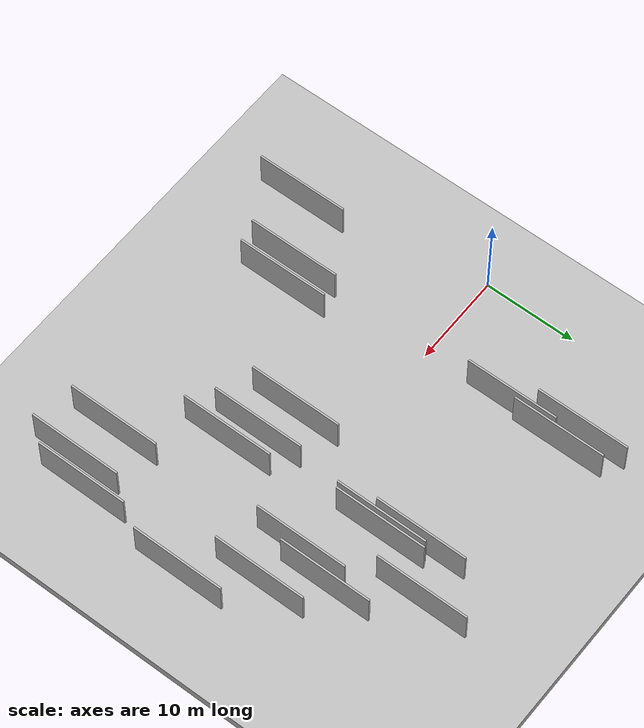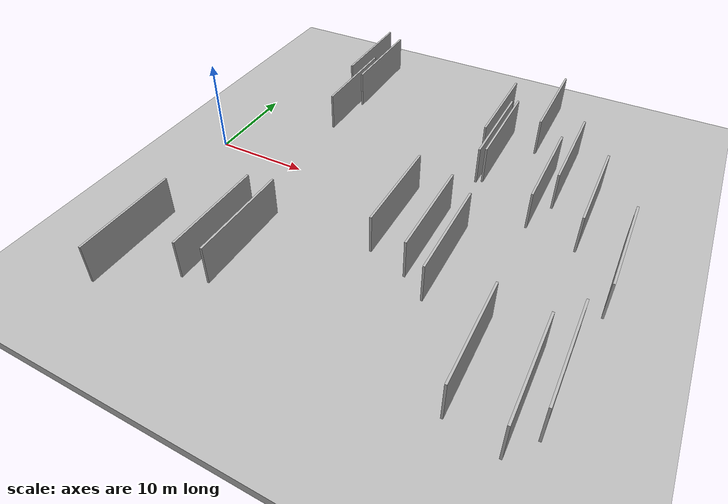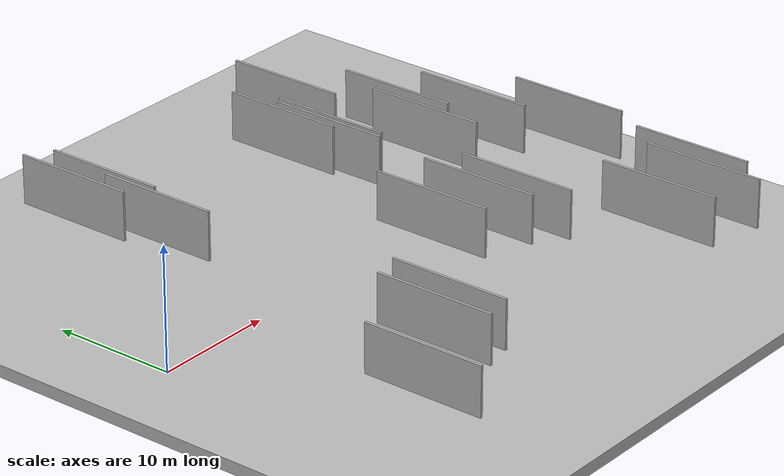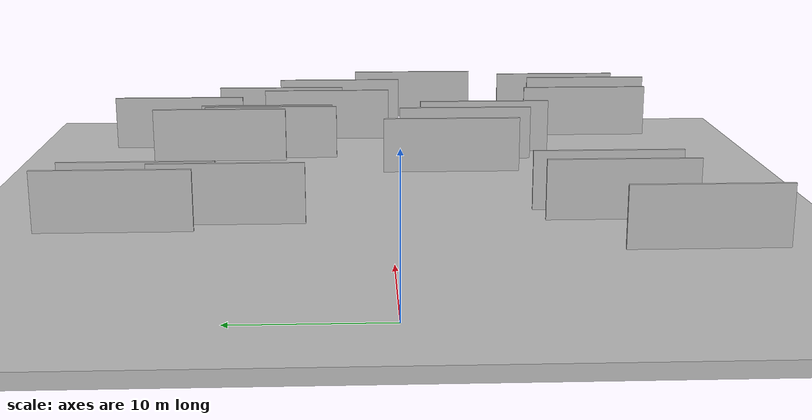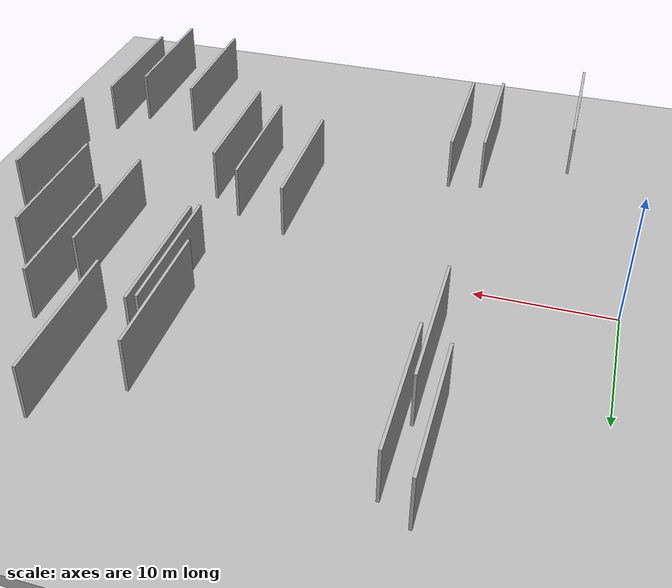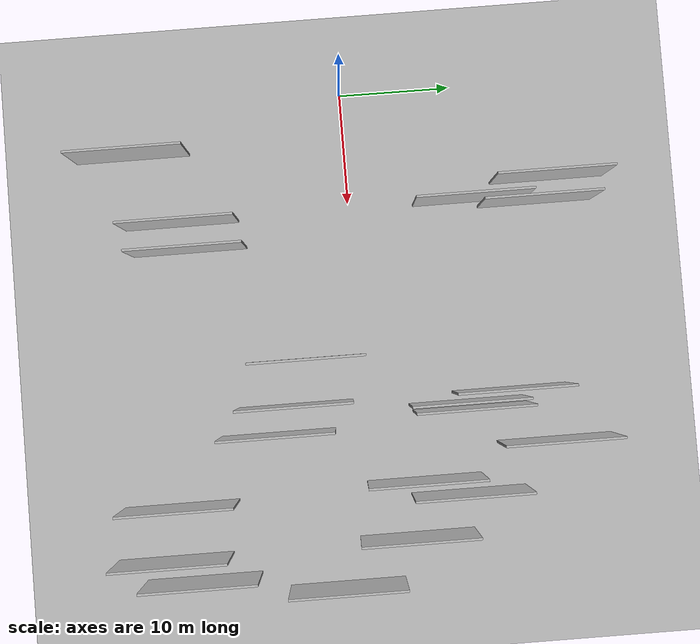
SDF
<?xml version="1.0" encoding="utf-8"?>

<sdf version="1.6">

   <world name="default">

      <gui fullscreen="0">

         <camera name="user_camera">

            <pose>-15 0 4.57585 0 0 0</pose>

            <view_controller>orbit</view_controller>

         </camera>

      </gui>

      <scene>

         <sky>

           <clouds>

             <speed>12</speed>

           </clouds>

         </sky>

         <ambient>0.4 0.4 0.4 1</ambient>

         <background>0.7 0.7 0.7 1</background>

         <shadows>1</shadows>

      </scene>

      <gravity>0 0 -9.8066</gravity>

      <magnetic_field>6e-06 2.3e-05 -4.2e-05</magnetic_field>

      <physics default="0" name="default_physics" type="ode">

         <ode>

            <solver>

               <type>quick</type>

               <iters>10</iters>

               <sor>1.0</sor>

               <use_dynamic_moi_rescaling>0</use_dynamic_moi_rescaling>

            </solver>

            <constraints>

               <cfm>0</cfm>

               <erp>0.2</erp>

               <contact_max_correcting_vel>100</contact_max_correcting_vel>

               <contact_surface_layer>0.001</contact_surface_layer>

            </constraints>

         </ode>

         <max_step_size>0.004</max_step_size>

         <real_time_factor>1</real_time_factor>

         <real_time_update_rate>250</real_time_update_rate>

      </physics>

      <light name="sun" type="directional">

         <cast_shadows>1</cast_shadows>

         <pose>0 0 10 0 0 0</pose>

         <diffuse>0.8 0.8 0.8 1</diffuse>

         <specular>0.2 0.2 0.2 1</specular>

         <attenuation>

            <range>1000</range>

            <constant>0.9</constant>

            <linear>0.01</linear>

            <quadratic>0.001</quadratic>

         </attenuation>

         <direction>-0.5 0.1 -0.9</direction>

      </light>

      <include>

         <name>ground_plane_1</name>

         <uri>model://HANNAS_ground_plane</uri>

         <pose>0 0 0  0 0 0</pose>

      </include>

      <include>

         <name>ground_plane_2</name>

         <uri>model://HANNAS_ground_plane</uri>

         <pose>100 0 0  0 0 0</pose>

      </include>

      <model name="HANNAS_wall_1">

         <static>1</static>

         <pose frame="">27.7297 12.7606 2.5 0.000000 0.000000 1.570796</pose>

         <link name="link">

            <pose frame="">0 0 2.00 0 0 0</pose>

            <collision name="collision">

               <geometry>

                  <box>

                     <size>10.00 0.2 4.00</size>

                  </box>

               </geometry>

               <max_contacts>10</max_contacts>

               <surface>

                  <contact>

                     <ode/>

                  </contact>

                  <bounce/>

                  <friction>

                     <torsional>

                        <ode/>

                     </torsional>

                     <ode/>

                  </friction>

               </surface>

            </collision>

            <visual name="visual">

               <cast_shadows>0</cast_shadows>

               <geometry>

                  <box>

                     <size>10.00 0.2 4.00</size>

                  </box>

               </geometry>

               <material>

                  <script>

                     <uri>model://HANNAS_wall/materials/scripts</uri>

                     <uri>model://HANNAS_wall/materials/textures</uri>

                     <name>vrc/HANNAS_wall</name>

                  </script>

               </material>

            </visual>

            <self_collide>0</self_collide>

            <enable_wind>0</enable_wind>

            <kinematic>0</kinematic>

         </link>

      </model>

      <model name="HANNAS_wall_2">

         <static>1</static>

         <pose frame="">29.1136 9.2306 2.5 0.000000 0.000000 1.570796</pose>

         <link name="link">

            <pose frame="">0 0 2.00 0 0 0</pose>

            <collision name="collision">

               <geometry>

                  <box>

                     <size>10.00 0.2 4.00</size>

                  </box>

               </geometry>

               <max_contacts>10</max_contacts>

               <surface>

                  <contact>

                     <ode/>

                  </contact>

                  <bounce/>

                  <friction>

                     <torsional>

                        <ode/>

                     </torsional>

                     <ode/>

                  </friction>

               </surface>

            </collision>

            <visual name="visual">

               <cast_shadows>0</cast_shadows>

               <geometry>

                  <box>

                     <size>10.00 0.2 4.00</size>

                  </box>

               </geometry>

               <material>

                  <script>

                     <uri>model://HANNAS_wall/materials/scripts</uri>

                     <uri>model://HANNAS_wall/materials/textures</uri>

                     <name>vrc/HANNAS_wall</name>

                  </script>

               </material>

            </visual>

            <self_collide>0</self_collide>

            <enable_wind>0</enable_wind>

            <kinematic>0</kinematic>

         </link>

      </model>

      <model name="HANNAS_wall_3">

         <static>1</static>

         <pose frame="">34.9821 4.7703 2.5 0.000000 0.000000 1.570796</pose>

         <link name="link">

            <pose frame="">0 0 2.00 0 0 0</pose>

            <collision name="collision">

               <geometry>

                  <box>

                     <size>10.00 0.2 4.00</size>

                  </box>

               </geometry>

               <max_contacts>10</max_contacts>

               <surface>

                  <contact>

                     <ode/>

                  </contact>

                  <bounce/>

                  <friction>

                     <torsional>

                        <ode/>

                     </torsional>

                     <ode/>

                  </friction>

               </surface>

            </collision>

            <visual name="visual">

               <cast_shadows>0</cast_shadows>

               <geometry>

                  <box>

                     <size>10.00 0.2 4.00</size>

                  </box>

               </geometry>

               <material>

                  <script>

                     <uri>model://HANNAS_wall/materials/scripts</uri>

                     <uri>model://HANNAS_wall/materials/textures</uri>

                     <name>vrc/HANNAS_wall</name>

                  </script>

               </material>

            </visual>

            <self_collide>0</self_collide>

            <enable_wind>0</enable_wind>

            <kinematic>0</kinematic>

         </link>

      </model>

      <model name="HANNAS_wall_4">

         <static>1</static>

         <pose frame="">13.6669 -14.2070 2.5 0.000000 0.000000 1.570796</pose>

         <link name="link">

            <pose frame="">0 0 2.00 0 0 0</pose>

            <collision name="collision">

               <geometry>

                  <box>

                     <size>10.00 0.2 4.00</size>

                  </box>

               </geometry>

               <max_contacts>10</max_contacts>

               <surface>

                  <contact>

                     <ode/>

                  </contact>

                  <bounce/>

                  <friction>

                     <torsional>

                        <ode/>

                     </torsional>

                     <ode/>

                  </friction>

               </surface>

            </collision>

            <visual name="visual">

               <cast_shadows>0</cast_shadows>

               <geometry>

                  <box>

                     <size>10.00 0.2 4.00</size>

                  </box>

               </geometry>

               <material>

                  <script>

                     <uri>model://HANNAS_wall/materials/scripts</uri>

                     <uri>model://HANNAS_wall/materials/textures</uri>

                     <name>vrc/HANNAS_wall</name>

                  </script>

               </material>

            </visual>

            <self_collide>0</self_collide>

            <enable_wind>0</enable_wind>

            <kinematic>0</kinematic>

         </link>

      </model>

      <model name="HANNAS_wall_5">

         <static>1</static>

         <pose frame="">23.8813 -4.6090 2.5 0.000000 0.000000 1.570796</pose>

         <link name="link">

            <pose frame="">0 0 2.00 0 0 0</pose>

            <collision name="collision">

               <geometry>

                  <box>

                     <size>10.00 0.2 4.00</size>

                  </box>

               </geometry>

               <max_contacts>10</max_contacts>

               <surface>

                  <contact>

                     <ode/>

                  </contact>

                  <bounce/>

                  <friction>

                     <torsional>

                        <ode/>

                     </torsional>

                     <ode/>

                  </friction>

               </surface>

            </collision>

            <visual name="visual">

               <cast_shadows>0</cast_shadows>

               <geometry>

                  <box>

                     <size>10.00 0.2 4.00</size>

                  </box>

               </geometry>

               <material>

                  <script>

                     <uri>model://HANNAS_wall/materials/scripts</uri>

                     <uri>model://HANNAS_wall/materials/textures</uri>

                     <name>vrc/HANNAS_wall</name>

                  </script>

               </material>

            </visual>

            <self_collide>0</self_collide>

            <enable_wind>0</enable_wind>

            <kinematic>0</kinematic>

         </link>

      </model>

      <model name="HANNAS_wall_6">

         <static>1</static>

         <pose frame="">5.0486 -18.6719 2.5 0.000000 0.000000 1.570796</pose>

         <link name="link">

            <pose frame="">0 0 2.00 0 0 0</pose>

            <collision name="collision">

               <geometry>

                  <box>

                     <size>10.00 0.2 4.00</size>

                  </box>

               </geometry>

               <max_contacts>10</max_contacts>

               <surface>

                  <contact>

                     <ode/>

                  </contact>

                  <bounce/>

                  <friction>

                     <torsional>

                        <ode/>

                     </torsional>

                     <ode/>

                  </friction>

               </surface>

            </collision>

            <visual name="visual">

               <cast_shadows>0</cast_shadows>

               <geometry>

                  <box>

                     <size>10.00 0.2 4.00</size>

                  </box>

               </geometry>

               <material>

                  <script>

                     <uri>model://HANNAS_wall/materials/scripts</uri>

                     <uri>model://HANNAS_wall/materials/textures</uri>

                     <name>vrc/HANNAS_wall</name>

                  </script>

               </material>

            </visual>

            <self_collide>0</self_collide>

            <enable_wind>0</enable_wind>

            <kinematic>0</kinematic>

         </link>

      </model>

      <model name="HANNAS_wall_7">

         <static>1</static>

         <pose frame="">30.1408 -7.6224 2.5 0.000000 0.000000 1.570796</pose>

         <link name="link">

            <pose frame="">0 0 2.00 0 0 0</pose>

            <collision name="collision">

               <geometry>

                  <box>

                     <size>10.00 0.2 4.00</size>

                  </box>

               </geometry>

               <max_contacts>10</max_contacts>

               <surface>

                  <contact>

                     <ode/>

                  </contact>

                  <bounce/>

                  <friction>

                     <torsional>

                        <ode/>

                     </torsional>

                     <ode/>

                  </friction>

               </surface>

            </collision>

            <visual name="visual">

               <cast_shadows>0</cast_shadows>

               <geometry>

                  <box>

                     <size>10.00 0.2 4.00</size>

                  </box>

               </geometry>

               <material>

                  <script>

                     <uri>model://HANNAS_wall/materials/scripts</uri>

                     <uri>model://HANNAS_wall/materials/textures</uri>

                     <name>vrc/HANNAS_wall</name>

                  </script>

               </material>

            </visual>

            <self_collide>0</self_collide>

            <enable_wind>0</enable_wind>

            <kinematic>0</kinematic>

         </link>

      </model>

      <model name="HANNAS_wall_8">

         <static>1</static>

         <pose frame="">11.0710 10.6341 2.5 0.000000 0.000000 1.570796</pose>

         <link name="link">

            <pose frame="">0 0 2.00 0 0 0</pose>

            <collision name="collision">

               <geometry>

                  <box>

                     <size>10.00 0.2 4.00</size>

                  </box>

               </geometry>

               <max_contacts>10</max_contacts>

               <surface>

                  <contact>

                     <ode/>

                  </contact>

                  <bounce/>

                  <friction>

                     <torsional>

                        <ode/>

                     </torsional>

                     <ode/>

                  </friction>

               </surface>

            </collision>

            <visual name="visual">

               <cast_shadows>0</cast_shadows>

               <geometry>

                  <box>

                     <size>10.00 0.2 4.00</size>

                  </box>

               </geometry>

               <material>

                  <script>

                     <uri>model://HANNAS_wall/materials/scripts</uri>

                     <uri>model://HANNAS_wall/materials/textures</uri>

                     <name>vrc/HANNAS_wall</name>

                  </script>

               </material>

            </visual>

            <self_collide>0</self_collide>

            <enable_wind>0</enable_wind>

            <kinematic>0</kinematic>

         </link>

      </model>

      <model name="HANNAS_wall_9">

         <static>1</static>

         <pose frame="">28.5449 8.9120 2.5 0.000000 0.000000 1.570796</pose>

         <link name="link">

            <pose frame="">0 0 2.00 0 0 0</pose>

            <collision name="collision">

               <geometry>

                  <box>

                     <size>10.00 0.2 4.00</size>

                  </box>

               </geometry>

               <max_contacts>10</max_contacts>

               <surface>

                  <contact>

                     <ode/>

                  </contact>

                  <bounce/>

                  <friction>

                     <torsional>

                        <ode/>

                     </torsional>

                     <ode/>

                  </friction>

               </surface>

            </collision>

            <visual name="visual">

               <cast_shadows>0</cast_shadows>

               <geometry>

                  <box>

                     <size>10.00 0.2 4.00</size>

                  </box>

               </geometry>

               <material>

                  <script>

                     <uri>model://HANNAS_wall/materials/scripts</uri>

                     <uri>model://HANNAS_wall/materials/textures</uri>

                     <name>vrc/HANNAS_wall</name>

                  </script>

               </material>

            </visual>

            <self_collide>0</self_collide>

            <enable_wind>0</enable_wind>

            <kinematic>0</kinematic>

         </link>

      </model>

      <model name="HANNAS_wall_10">

         <static>1</static>

         <pose frame="">42.0780 -14.9169 2.5 0.000000 0.000000 1.570796</pose>

         <link name="link">

            <pose frame="">0 0 2.00 0 0 0</pose>

            <collision name="collision">

               <geometry>

                  <box>

                     <size>10.00 0.2 4.00</size>

                  </box>

               </geometry>

               <max_contacts>10</max_contacts>

               <surface>

                  <contact>

                     <ode/>

                  </contact>

                  <bounce/>

                  <friction>

                     <torsional>

                        <ode/>

                     </torsional>

                     <ode/>

                  </friction>

               </surface>

            </collision>

            <visual name="visual">

               <cast_shadows>0</cast_shadows>

               <geometry>

                  <box>

                     <size>10.00 0.2 4.00</size>

                  </box>

               </geometry>

               <material>

                  <script>

                     <uri>model://HANNAS_wall/materials/scripts</uri>

                     <uri>model://HANNAS_wall/materials/textures</uri>

                     <name>vrc/HANNAS_wall</name>

                  </script>

               </material>

            </visual>

            <self_collide>0</self_collide>

            <enable_wind>0</enable_wind>

            <kinematic>0</kinematic>

         </link>

      </model>

      <model name="HANNAS_wall_11">

         <static>1</static>

         <pose frame="">35.6807 -16.4544 2.5 0.000000 0.000000 1.570796</pose>

         <link name="link">

            <pose frame="">0 0 2.00 0 0 0</pose>

            <collision name="collision">

               <geometry>

                  <box>

                     <size>10.00 0.2 4.00</size>

                  </box>

               </geometry>

               <max_contacts>10</max_contacts>

               <surface>

                  <contact>

                     <ode/>

                  </contact>

                  <bounce/>

                  <friction>

                     <torsional>

                        <ode/>

                     </torsional>

                     <ode/>

                  </friction>

               </surface>

            </collision>

            <visual name="visual">

               <cast_shadows>0</cast_shadows>

               <geometry>

                  <box>

                     <size>10.00 0.2 4.00</size>

                  </box>

               </geometry>

               <material>

                  <script>

                     <uri>model://HANNAS_wall/materials/scripts</uri>

                     <uri>model://HANNAS_wall/materials/textures</uri>

                     <name>vrc/HANNAS_wall</name>

                  </script>

               </material>

            </visual>

            <self_collide>0</self_collide>

            <enable_wind>0</enable_wind>

            <kinematic>0</kinematic>

         </link>

      </model>

      <model name="HANNAS_wall_12">

         <static>1</static>

         <pose frame="">32.3566 16.3644 2.5 0.000000 0.000000 1.570796</pose>

         <link name="link">

            <pose frame="">0 0 2.00 0 0 0</pose>

            <collision name="collision">

               <geometry>

                  <box>

                     <size>10.00 0.2 4.00</size>

                  </box>

               </geometry>

               <max_contacts>10</max_contacts>

               <surface>

                  <contact>

                     <ode/>

                  </contact>

                  <bounce/>

                  <friction>

                     <torsional>

                        <ode/>

                     </torsional>

                     <ode/>

                  </friction>

               </surface>

            </collision>

            <visual name="visual">

               <cast_shadows>0</cast_shadows>

               <geometry>

                  <box>

                     <size>10.00 0.2 4.00</size>

                  </box>

               </geometry>

               <material>

                  <script>

                     <uri>model://HANNAS_wall/materials/scripts</uri>

                     <uri>model://HANNAS_wall/materials/textures</uri>

                     <name>vrc/HANNAS_wall</name>

                  </script>

               </material>

            </visual>

            <self_collide>0</self_collide>

            <enable_wind>0</enable_wind>

            <kinematic>0</kinematic>

         </link>

      </model>

      <model name="HANNAS_wall_13">

         <static>1</static>

         <pose frame="">9.6298 17.5691 2.5 0.000000 0.000000 1.570796</pose>

         <link name="link">

            <pose frame="">0 0 2.00 0 0 0</pose>

            <collision name="collision">

               <geometry>

                  <box>

                     <size>10.00 0.2 4.00</size>

                  </box>

               </geometry>

               <max_contacts>10</max_contacts>

               <surface>

                  <contact>

                     <ode/>

                  </contact>

                  <bounce/>

                  <friction>

                     <torsional>

                        <ode/>

                     </torsional>

                     <ode/>

                  </friction>

               </surface>

            </collision>

            <visual name="visual">

               <cast_shadows>0</cast_shadows>

               <geometry>

                  <box>

                     <size>10.00 0.2 4.00</size>

                  </box>

               </geometry>

               <material>

                  <script>

                     <uri>model://HANNAS_wall/materials/scripts</uri>

                     <uri>model://HANNAS_wall/materials/textures</uri>

                     <name>vrc/HANNAS_wall</name>

                  </script>

               </material>

            </visual>

            <self_collide>0</self_collide>

            <enable_wind>0</enable_wind>

            <kinematic>0</kinematic>

         </link>

      </model>

      <model name="HANNAS_wall_14">

         <static>1</static>

         <pose frame="">43.4850 -2.5409 2.5 0.000000 0.000000 1.570796</pose>

         <link name="link">

            <pose frame="">0 0 2.00 0 0 0</pose>

            <collision name="collision">

               <geometry>

                  <box>

                     <size>10.00 0.2 4.00</size>

                  </box>

               </geometry>

               <max_contacts>10</max_contacts>

               <surface>

                  <contact>

                     <ode/>

                  </contact>

                  <bounce/>

                  <friction>

                     <torsional>

                        <ode/>

                     </torsional>

                     <ode/>

                  </friction>

               </surface>

            </collision>

            <visual name="visual">

               <cast_shadows>0</cast_shadows>

               <geometry>

                  <box>

                     <size>10.00 0.2 4.00</size>

                  </box>

               </geometry>

               <material>

                  <script>

                     <uri>model://HANNAS_wall/materials/scripts</uri>

                     <uri>model://HANNAS_wall/materials/textures</uri>

                     <name>vrc/HANNAS_wall</name>

                  </script>

               </material>

            </visual>

            <self_collide>0</self_collide>

            <enable_wind>0</enable_wind>

            <kinematic>0</kinematic>

         </link>

      </model>

      <model name="HANNAS_wall_15">

         <static>1</static>

         <pose frame="">39.7110 3.7896 2.5 0.000000 0.000000 1.570796</pose>

         <link name="link">

            <pose frame="">0 0 2.00 0 0 0</pose>

            <collision name="collision">

               <geometry>

                  <box>

                     <size>10.00 0.2 4.00</size>

                  </box>

               </geometry>

               <max_contacts>10</max_contacts>

               <surface>

                  <contact>

                     <ode/>

                  </contact>

                  <bounce/>

                  <friction>

                     <torsional>

                        <ode/>

                     </torsional>

                     <ode/>

                  </friction>

               </surface>

            </collision>

            <visual name="visual">

               <cast_shadows>0</cast_shadows>

               <geometry>

                  <box>

                     <size>10.00 0.2 4.00</size>

                  </box>

               </geometry>

               <material>

                  <script>

                     <uri>model://HANNAS_wall/materials/scripts</uri>

                     <uri>model://HANNAS_wall/materials/textures</uri>

                     <name>vrc/HANNAS_wall</name>

                  </script>

               </material>

            </visual>

            <self_collide>0</self_collide>

            <enable_wind>0</enable_wind>

            <kinematic>0</kinematic>

         </link>

      </model>

      <model name="HANNAS_wall_16">

         <static>1</static>

         <pose frame="">27.7596 -5.9204 2.5 0.000000 0.000000 1.570796</pose>

         <link name="link">

            <pose frame="">0 0 2.00 0 0 0</pose>

            <collision name="collision">

               <geometry>

                  <box>

                     <size>10.00 0.2 4.00</size>

                  </box>

               </geometry>

               <max_contacts>10</max_contacts>

               <surface>

                  <contact>

                     <ode/>

                  </contact>

                  <bounce/>

                  <friction>

                     <torsional>

                        <ode/>

                     </torsional>

                     <ode/>

                  </friction>

               </surface>

            </collision>

            <visual name="visual">

               <cast_shadows>0</cast_shadows>

               <geometry>

                  <box>

                     <size>10.00 0.2 4.00</size>

                  </box>

               </geometry>

               <material>

                  <script>

                     <uri>model://HANNAS_wall/materials/scripts</uri>

                     <uri>model://HANNAS_wall/materials/textures</uri>

                     <name>vrc/HANNAS_wall</name>

                  </script>

               </material>

            </visual>

            <self_collide>0</self_collide>

            <enable_wind>0</enable_wind>

            <kinematic>0</kinematic>

         </link>

      </model>

      <model name="HANNAS_wall_17">

         <static>1</static>

         <pose frame="">40.1789 -17.2906 2.5 0.000000 0.000000 1.570796</pose>

         <link name="link">

            <pose frame="">0 0 2.00 0 0 0</pose>

            <collision name="collision">

               <geometry>

                  <box>

                     <size>10.00 0.2 4.00</size>

                  </box>

               </geometry>

               <max_contacts>10</max_contacts>

               <surface>

                  <contact>

                     <ode/>

                  </contact>

                  <bounce/>

                  <friction>

                     <torsional>

                        <ode/>

                     </torsional>

                     <ode/>

                  </friction>

               </surface>

            </collision>

            <visual name="visual">

               <cast_shadows>0</cast_shadows>

               <geometry>

                  <box>

                     <size>10.00 0.2 4.00</size>

                  </box>

               </geometry>

               <material>

                  <script>

                     <uri>model://HANNAS_wall/materials/scripts</uri>

                     <uri>model://HANNAS_wall/materials/textures</uri>

                     <name>vrc/HANNAS_wall</name>

                  </script>

               </material>

            </visual>

            <self_collide>0</self_collide>

            <enable_wind>0</enable_wind>

            <kinematic>0</kinematic>

         </link>

      </model>

      <model name="HANNAS_wall_18">

         <static>1</static>

         <pose frame="">11.6455 16.3313 2.5 0.000000 0.000000 1.570796</pose>

         <link name="link">

            <pose frame="">0 0 2.00 0 0 0</pose>

            <collision name="collision">

               <geometry>

                  <box>

                     <size>10.00 0.2 4.00</size>

                  </box>

               </geometry>

               <max_contacts>10</max_contacts>

               <surface>

                  <contact>

                     <ode/>

                  </contact>

                  <bounce/>

                  <friction>

                     <torsional>

                        <ode/>

                     </torsional>

                     <ode/>

                  </friction>

               </surface>

            </collision>

            <visual name="visual">

               <cast_shadows>0</cast_shadows>

               <geometry>

                  <box>

                     <size>10.00 0.2 4.00</size>

                  </box>

               </geometry>

               <material>

                  <script>

                     <uri>model://HANNAS_wall/materials/scripts</uri>

                     <uri>model://HANNAS_wall/materials/textures</uri>

                     <name>vrc/HANNAS_wall</name>

                  </script>

               </material>

            </visual>

            <self_collide>0</self_collide>

            <enable_wind>0</enable_wind>

            <kinematic>0</kinematic>

         </link>

      </model>

      <model name="HANNAS_wall_19">

         <static>1</static>

         <pose frame="">11.2823 -14.7544 2.5 0.000000 0.000000 1.570796</pose>

         <link name="link">

            <pose frame="">0 0 2.00 0 0 0</pose>

            <collision name="collision">

               <geometry>

                  <box>

                     <size>10.00 0.2 4.00</size>

                  </box>

               </geometry>

               <max_contacts>10</max_contacts>

               <surface>

                  <contact>

                     <ode/>

                  </contact>

                  <bounce/>

                  <friction>

                     <torsional>

                        <ode/>

                     </torsional>

                     <ode/>

                  </friction>

               </surface>

            </collision>

            <visual name="visual">

               <cast_shadows>0</cast_shadows>

               <geometry>

                  <box>

                     <size>10.00 0.2 4.00</size>

                  </box>

               </geometry>

               <material>

                  <script>

                     <uri>model://HANNAS_wall/materials/scripts</uri>

                     <uri>model://HANNAS_wall/materials/textures</uri>

                     <name>vrc/HANNAS_wall</name>

                  </script>

               </material>

            </visual>

            <self_collide>0</self_collide>

            <enable_wind>0</enable_wind>

            <kinematic>0</kinematic>

         </link>

      </model>

      <model name="HANNAS_wall_20">

         <static>1</static>

         <pose frame="">36.3270 8.5463 2.5 0.000000 0.000000 1.570796</pose>

         <link name="link">

            <pose frame="">0 0 2.00 0 0 0</pose>

            <collision name="collision">

               <geometry>

                  <box>

                     <size>10.00 0.2 4.00</size>

                  </box>

               </geometry>

               <max_contacts>10</max_contacts>

               <surface>

                  <contact>

                     <ode/>

                  </contact>

                  <bounce/>

                  <friction>

                     <torsional>

                        <ode/>

                     </torsional>

                     <ode/>

                  </friction>

               </surface>

            </collision>

            <visual name="visual">

               <cast_shadows>0</cast_shadows>

               <geometry>

                  <box>

                     <size>10.00 0.2 4.00</size>

                  </box>

               </geometry>

               <material>

                  <script>

                     <uri>model://HANNAS_wall/materials/scripts</uri>

                     <uri>model://HANNAS_wall/materials/textures</uri>

                     <name>vrc/HANNAS_wall</name>

                  </script>

               </material>

            </visual>

            <self_collide>0</self_collide>

            <enable_wind>0</enable_wind>

            <kinematic>0</kinematic>

         </link>

      </model>

   </world>

</sdf>

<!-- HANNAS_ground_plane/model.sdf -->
<sdf version="1.4">
<model name="HANNAS_ground_plane">
  <static>true</static>
    <link name="link">
      <collision name="collision">
        <geometry>
          <plane>
            <normal>0 0 1</normal>
            <size>1000 1000</size>
          </plane>
        </geometry>
        <surface>
          <friction>
            <ode>
              <mu>100</mu>
              <mu2>50</mu2>
            </ode>
          </friction>
        </surface>
      </collision>
      <visual name="visual">
        <cast_shadows>false</cast_shadows>
        <geometry>
          <plane>
            <normal>0 0 1</normal>
            <size>1000 1000</size>
          </plane>
        </geometry>
        <material>
          <script>
            <uri>model://HANNAS_ground_plane/materials/scripts/HANNAS_ground_plane.material</uri>
	    <uri>model://HANNAS_ground_plane/materials/textures</uri>
            <name>HANNASGroundPlane/Image</name>
          </script>
        </material>
      </visual>
    </link>
  </model>
</sdf>
